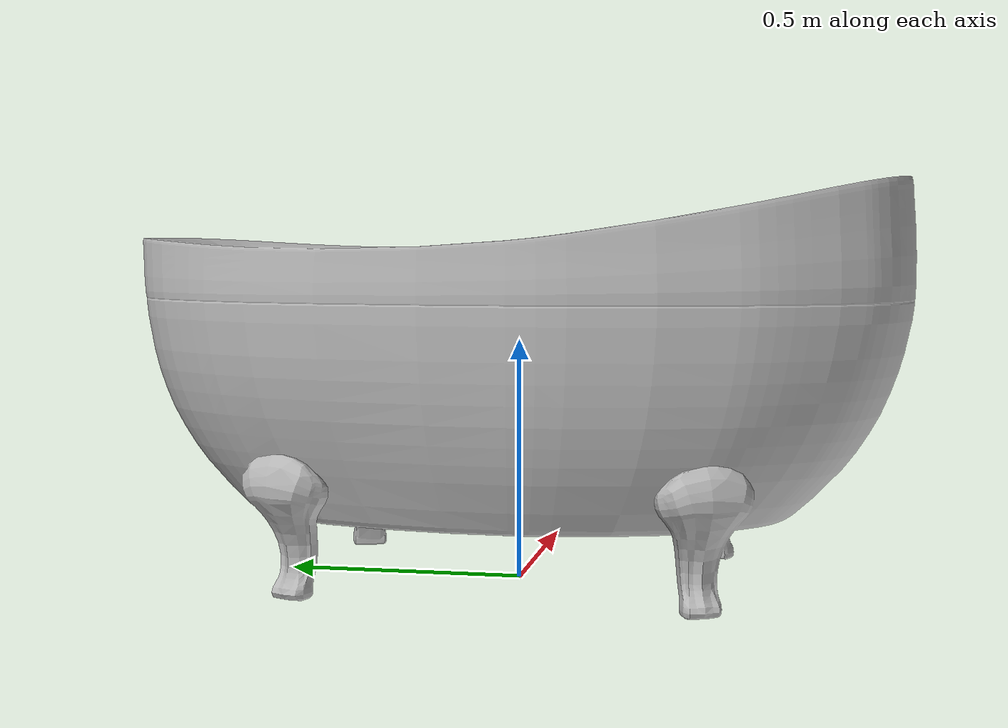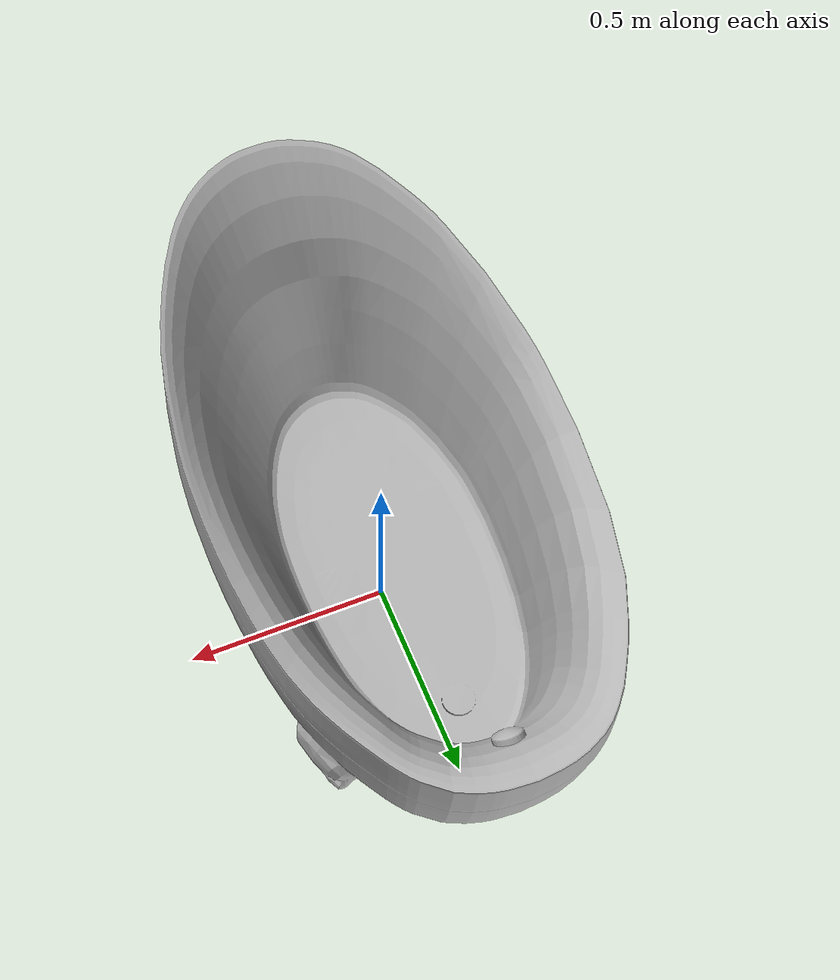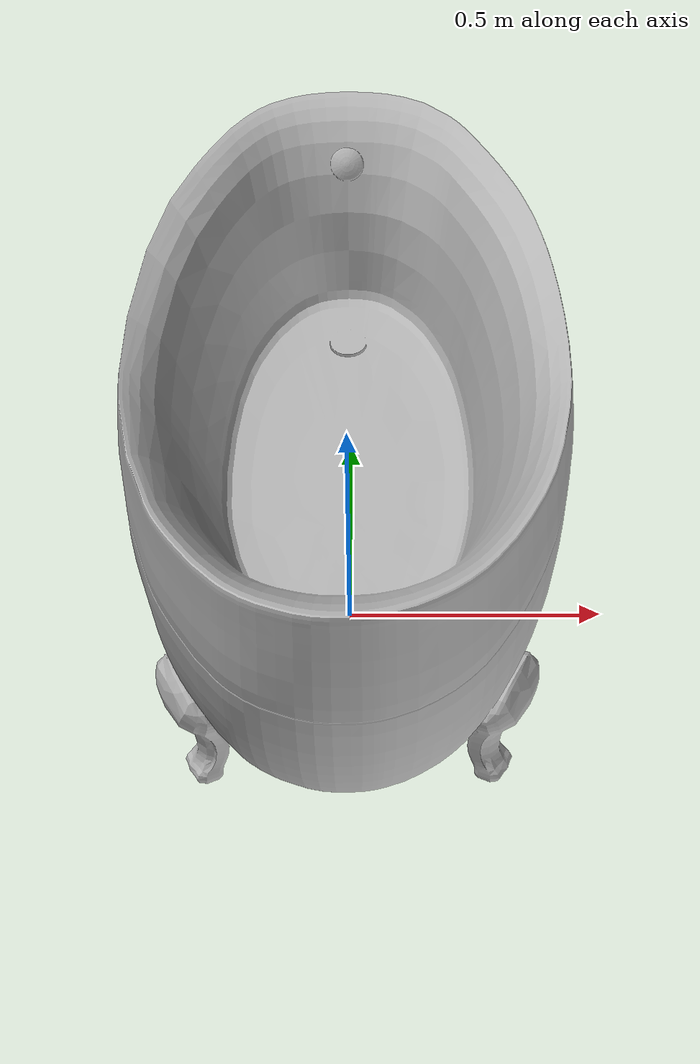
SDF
<?xml version='1.0'?>
<sdf version='1.6'>
  <model name='01_Bathtub'>
    <link name='body'>
	  <inertial>
        <mass>60</mass>
        <pose frame=''>0 0 0 0 0 0</pose>
        <inertia>
          <ixx>15.88898</ixx>
          <ixy>0</ixy>
          <ixz>0</ixz>
          <iyy>5.8269799</iyy>
          <iyz>0</iyz>
          <izz>15.538</izz>
        </inertia>
      </inertial>
      <pose frame=''>0 0 0 0 -0 0</pose>
      <self_collide>0</self_collide>
      <kinematic>0</kinematic>
      <gravity>1</gravity>
      <visual name='visual'>
        <geometry>
          <mesh>
            <uri>model://Bathtub_82fff6c60a44_lod0/meshes/visual_LowPoly_01_Bathtub.dae</uri>
          </mesh>
        </geometry>
		<meta> <layer> 1 </layer></meta>
      </visual>
      <collision name='collision_0'>
        <laser_retro>0</laser_retro>
        <max_contacts>10</max_contacts>
        <pose frame=''>0 0 0 0 -0 0</pose>
        <geometry>
          <mesh>
            <uri>model://Bathtub_82fff6c60a44_lod0/meshes/collision_01_Bathtub.dae</uri>
            <scale>1 1 1</scale>
          </mesh>
        </geometry>
		<surface>
          <friction>
            <ode>
              <mu>0.6</mu>
              <mu2>0.6</mu2>
              <fdir1>0 0 0</fdir1>
              <slip1>0</slip1>
              <slip2>0</slip2>
            </ode>
            <torsional>
              <coefficient>1</coefficient>
              <patch_radius>0</patch_radius>
              <surface_radius>0</surface_radius>
              <use_patch_radius>1</use_patch_radius>
              <ode>
                <slip>0</slip>
              </ode>
            </torsional>
          </friction>
        </surface>
      </collision>
    </link>
    <static>true</static>
  </model>
</sdf>
